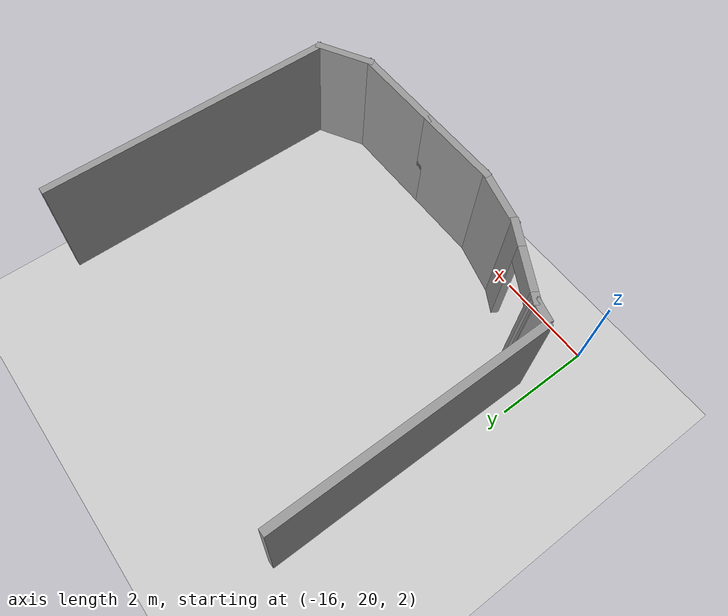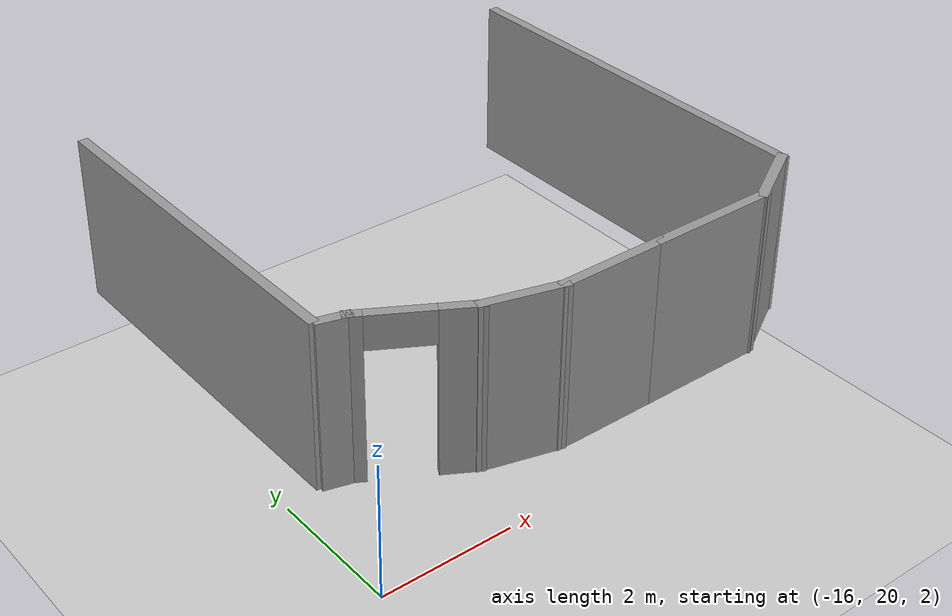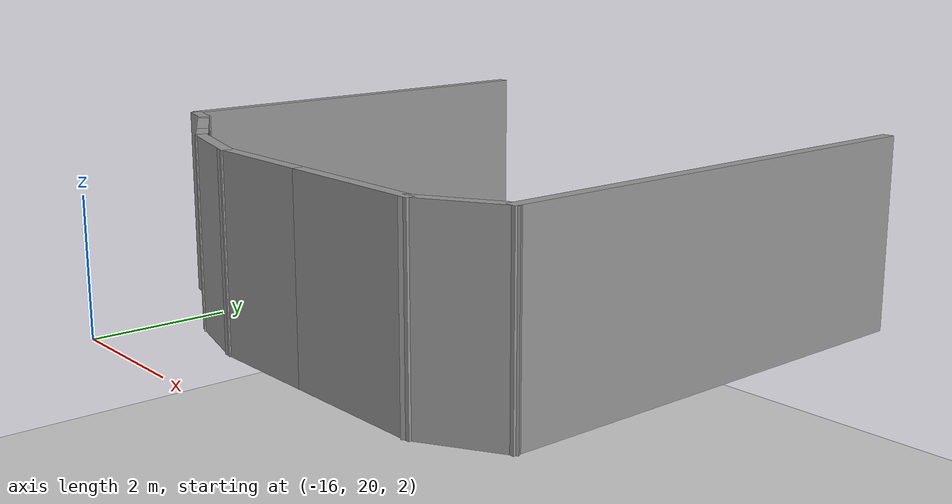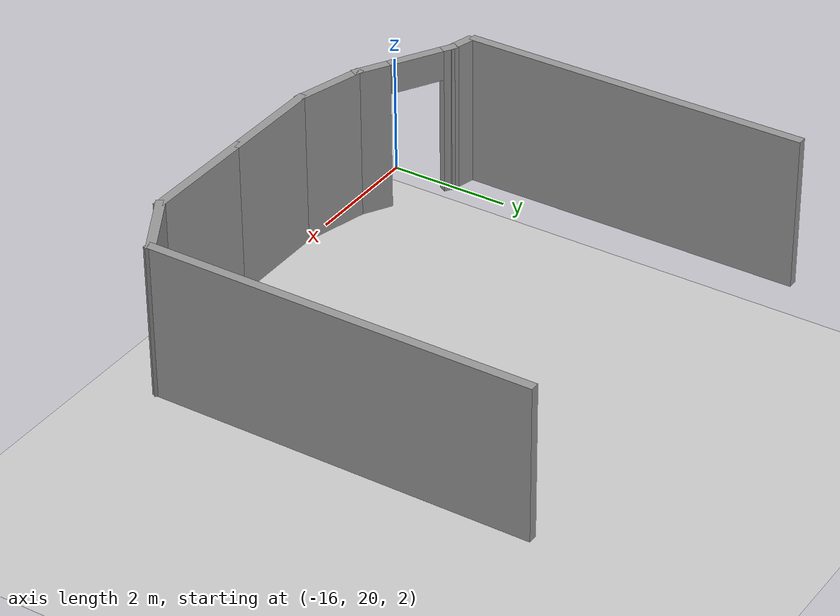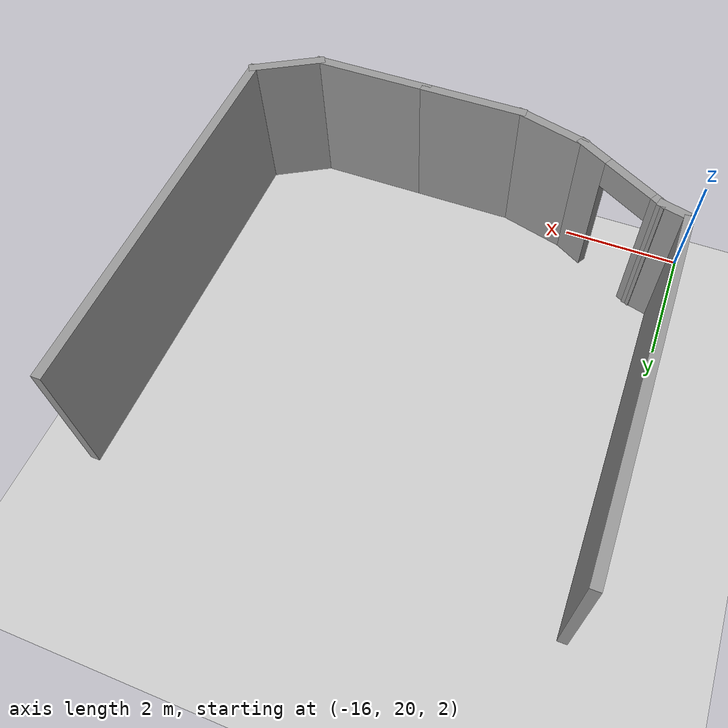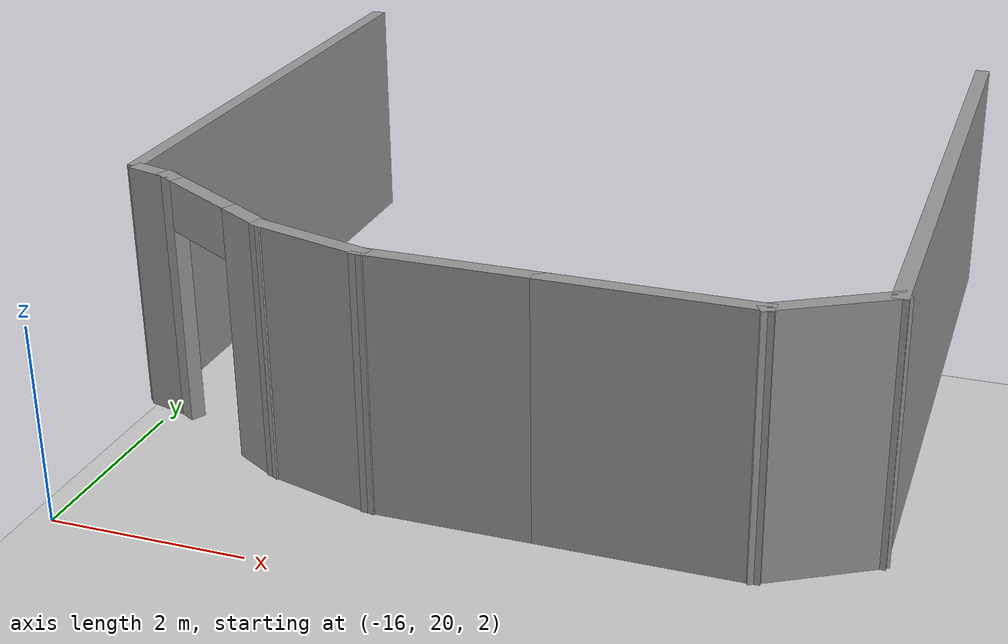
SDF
<sdf version="1.5">
 <world name="default">
  <model name="ground_plane">
   <static>1</static>
   <link name="link">
    <collision name="collision">
     <geometry><plane><normal>0 0 1</normal><size>100 100</size></plane></geometry>
     <surface>
      <contact><collide_bitmask>65535</collide_bitmask></contact>
      <friction><ode><mu>100</mu><mu2>50</mu2></ode></friction>
     </surface>
    </collision>
    <visual name="visual">
     <cast_shadows>0</cast_shadows>
     <geometry><plane><normal>0 0 1</normal><size>100 100</size></plane></geometry>
     <material>
      <script><uri>file://media/materials/scripts/gazebo.material</uri><name>Gazebo/Grey</name></script>
     </material>
    </visual>
   </link>
  </model>
  <model name="second_add_11">
   <pose>-12.257 19.2956 0 0 -0 0</pose>
   <link name="Wall_59">
    <collision name="Wall_59_Collision">
     <geometry><box><size>5.25 0.15 2.5</size></box></geometry>
     <pose>0 0 1.25 0 -0 0</pose>
    </collision>
    <visual name="Wall_59_Visual">
     <pose>0 0 1.25 0 -0 0</pose>
     <geometry><box><size>5.65 0.15 2.5</size></box></geometry>
     <material>
      <script><uri>file://media/materials/scripts/gazebo.material</uri><name>Gazebo/Grey</name></script>
      <ambient>1 1 1 1</ambient>
     </material>
     <meta><layer>1</layer></meta>
    </visual>
    <pose>-3.49298 5.10197 2.5 0 -0 1.5708</pose>
   </link>
   <link name="Wall_62">
    <collision name="Wall_62_Collision">
     <geometry><box><size>0.5 0.15 2.5</size></box></geometry>
     <pose>0 0 1.25 0 -0 0</pose>
    </collision>
    <visual name="Wall_62_Visual">
     <pose>0 0 1.25 0 -0 0</pose>
     <geometry><box><size>0.5 0.15 2.5</size></box></geometry>
     <material>
      <script><uri>file://media/materials/scripts/gazebo.material</uri><name>Gazebo/Grey</name></script>
      <ambient>1 1 1 1</ambient>
     </material>
     <meta><layer>1</layer></meta>
    </visual>
    <pose>-3.25746 2.22924 2.5 0 -0 -0.261799</pose>
   </link>
   <link name="Wall_63">
    <pose>-2.3956 1.78395 2.5 0 -0 -0.523599</pose>
    <visual name="Wall_63_Visual_0">
     <pose>-0.74962 0 1.25 0 -0 0</pose>
     <geometry><box><size>0.25076 0.15 2.5</size></box></geometry>
     <material>
      <script><uri>file://media/materials/scripts/gazebo.material</uri><name>Gazebo/Grey</name></script>
      <ambient>1 1 1 1</ambient>
     </material>
     <meta><layer>1</layer></meta>
    </visual>
    <collision name="Wall_63_Collision_0">
     <geometry><box><size>0.25076 0.15 2.5</size></box></geometry>
     <pose>-0.74962 0 1.25 0 -0 0</pose>
    </collision>
    <visual name="Wall_63_Visual_1">
     <pose>0.57538 0 1.25 0 -0 0</pose>
     <geometry><box><size>0.59924 0.15 2.5</size></box></geometry>
     <material>
      <script><uri>file://media/materials/scripts/gazebo.material</uri><name>Gazebo/Grey</name></script>
      <ambient>1 1 1 1</ambient>
     </material>
     <meta><layer>1</layer></meta>
    </visual>
    <collision name="Wall_63_Collision_1">
     <geometry><box><size>0.59924 0.15 2.5</size></box></geometry>
     <pose>0.57538 0 1.25 0 -0 0</pose>
    </collision>
    <visual name="Wall_63_Visual_2">
     <pose>-0.17424 0 2.25 0 -0 0</pose>
     <geometry><box><size>0.9 0.15 0.5</size></box></geometry>
     <material>
      <script><uri>file://media/materials/scripts/gazebo.material</uri><name>Gazebo/Grey</name></script>
      <ambient>1 1 1 1</ambient>
     </material>
     <meta><layer>1</layer></meta>
    </visual>
    <collision name="Wall_63_Collision_2">
     <geometry><box><size>0.9 0.15 0.5</size></box></geometry>
     <pose>-0.17424 0 2.25 0 -0 0</pose>
    </collision>
   </link>
   <link name="Wall_64">
    <collision name="Wall_64_Collision">
     <geometry><box><size>1.25 0.15 2.5</size></box></geometry>
     <pose>0 0 1.25 0 -0 0</pose>
    </collision>
    <visual name="Wall_64_Visual">
     <pose>0 0 1.25 0 -0 0</pose>
     <geometry><box><size>1.25 0.15 2.5</size></box></geometry>
     <material>
      <script><uri>file://media/materials/scripts/gazebo.material</uri><name>Gazebo/Grey</name></script>
      <ambient>1 1 1 1</ambient>
     </material>
     <meta><layer>1</layer></meta>
    </visual>
    <pose>-1.17152 1.2416 2.5 0 -0 -0.261799</pose>
   </link>
   <link name="Wall_65">
    <collision name="Wall_65_Collision">
     <geometry><box><size>1.75 0.15 2.5</size></box></geometry>
     <pose>0 0 1.25 0 -0 0</pose>
    </collision>
    <visual name="Wall_65_Visual">
     <pose>0 0 1.25 0 -0 0</pose>
     <geometry><box><size>1.75 0.15 2.5</size></box></geometry>
     <material>
      <script><uri>file://media/materials/scripts/gazebo.material</uri><name>Gazebo/Grey</name></script>
      <ambient>1 1 1 1</ambient>
     </material>
     <meta><layer>1</layer></meta>
    </visual>
    <pose>0.159736 1.09925 2.5 0 -0 0</pose>
   </link>
   <link name="Wall_66">
    <collision name="Wall_66_Collision">
     <geometry><box><size>2 0.15 2.5</size></box></geometry>
     <pose>0 0 1.25 0 -0 0</pose>
    </collision>
    <visual name="Wall_66_Visual">
     <pose>0 0 1.25 0 -0 0</pose>
     <geometry><box><size>2 0.15 2.5</size></box></geometry>
     <material>
      <script><uri>file://media/materials/scripts/gazebo.material</uri><name>Gazebo/Grey</name></script>
      <ambient>1 1 1 1</ambient>
     </material>
     <meta><layer>1</layer></meta>
    </visual>
    <pose>1.88474 1.09925 2.5 0 -0 0</pose>
   </link>
   <link name="Wall_67">
    <collision name="Wall_67_Collision">
     <geometry><box><size>1.25 0.15 2.5</size></box></geometry>
     <pose>0 0 1.25 0 -0 0</pose>
    </collision>
    <visual name="Wall_67_Visual">
     <pose>0 0 1.25 0 -0 0</pose>
     <geometry><box><size>1.25 0.15 2.5</size></box></geometry>
     <material>
      <script><uri>file://media/materials/scripts/gazebo.material</uri><name>Gazebo/Grey</name></script>
      <ambient>1 1 1 1</ambient>
     </material>
     <meta><layer>1</layer></meta>
    </visual>
    <pose>3.28605 1.37425 2.5 0 -0 0.523599</pose>
   </link>
   <link name="Wall_68">
    <collision name="Wall_68_Collision">
     <geometry><box><size>6.25 0.15 2.5</size></box></geometry>
     <pose>0 0 1.25 0 -0 0</pose>
    </collision>
    <visual name="Wall_68_Visual">
     <pose>0 0 1.25 0 -0 0</pose>
     <geometry><box><size>6.25 0.15 2.5</size></box></geometry>
     <material>
      <script><uri>file://media/materials/scripts/gazebo.material</uri><name>Gazebo/Grey</name></script>
      <ambient>1 1 1 1</ambient>
     </material>
     <meta><layer>1</layer></meta>
    </visual>
    <pose>3.76236 4.69925 2.5 0 -0 1.5708</pose>
   </link>
   <static>1</static>
  </model>
 </world>
</sdf>
